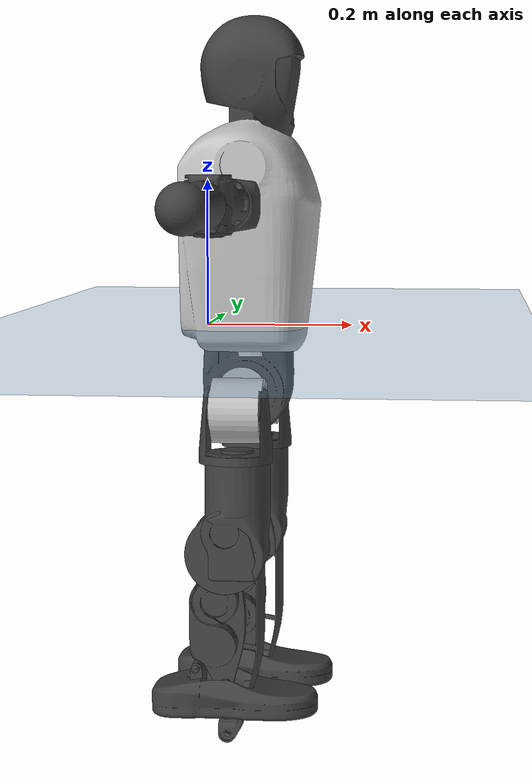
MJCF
<mujoco model="T1">
  <compiler angle="radian" assetdir="assets" balanceinertia="true" inertiafromgeom="false"/>

  <option timestep="0.005" density="1.2" viscosity="2e-05"/>

  <size nkey="1"/>

  <visual>
    <quality shadowsize="8192"/>
    <map shadowclip="0.5"/>
  </visual>

  <default>
    <default class="/">
      <joint armature="0.01" damping="0.01" frictionloss="0.1"/>
      <geom contype="0" conaffinity="0" group="1" solref="-1000 -80"/>
      <site size="0.01 0.005 0.005" group="5"/>
      <general forcelimited="true" biastype="affine" gainprm="25" biasprm="0 -25 -0.6"/>
      <default class="t1">
        <geom rgba="0.25 0.25 0.25 1"/>
        <default class="visual">
          <geom type="mesh" group="2"/>
        </default>
        <default class="collision">
          <geom group="3"/>
        </default>
        <default class="foot">
          <geom size="0.1115 0.05 0.015" type="box" condim="6" group="4" priority="1" solimp="0.015 1 0.015"/>
        </default>
        <default class="reward_collision_sphere">
          <geom group="5" rgba="1 0 0 1"/>
        </default>
      </default>
    </default>
  </default>

  <asset>
    <texture type="skybox" colorspace="auto" name="//unnamed_texture_0" builtin="gradient" rgb1="0.95 0.95 0.95" rgb2="0.95 0.95 0.95" width="100" height="600"/>
    <texture type="2d" colorspace="auto" name="texplane" builtin="checker" rgb1="0.345 0.575 0.748" rgb2="0.345 0.575 0.748" markrgb="1 1 1" width="512" height="512"/>
    <material name="MatPlane" class="/" texture="texplane" texuniform="true" texrepeat="2 2" specular="0.9"/>
    <mesh name="Trunk" class="/" file="Trunk.stl"/>
    <mesh name="H1" class="/" file="H1.stl"/>
    <mesh name="H2" class="/" file="H2.stl"/>
    <mesh name="AL1" class="/" file="AL1.stl"/>
    <mesh name="AL2" class="/" file="AL2.stl"/>
    <mesh name="AL3" class="/" file="AL3.stl"/>
    <mesh name="left_hand_link" class="/" file="left_hand_link.stl"/>
    <mesh name="AR1" class="/" file="AR1.stl"/>
    <mesh name="AR2" class="/" file="AR2.stl"/>
    <mesh name="AR3" class="/" file="AR3.stl"/>
    <mesh name="right_hand_link" class="/" file="right_hand_link.stl"/>
    <mesh name="Waist" class="/" file="Waist.stl"/>
    <mesh name="Hip_Pitch_Left" class="/" file="Hip_Pitch_Left.stl"/>
    <mesh name="Hip_Roll_Left" class="/" file="Hip_Roll_Left.stl"/>
    <mesh name="Hip_Yaw_Left" class="/" file="Hip_Yaw_Left.stl"/>
    <mesh name="Shank_Left" class="/" file="Shank_Left.stl"/>
    <mesh name="Ankle_Cross_Left" class="/" file="Ankle_Cross_Left.stl"/>
    <mesh name="left_foot_link" class="/" file="left_foot_link.stl"/>
    <mesh name="Hip_Pitch_Right" class="/" file="Hip_Pitch_Right.stl"/>
    <mesh name="Hip_Roll_Right" class="/" file="Hip_Roll_Right.stl"/>
    <mesh name="Hip_Yaw_Right" class="/" file="Hip_Yaw_Right.stl"/>
    <mesh name="Shank_Right" class="/" file="Shank_Right.stl"/>
    <mesh name="Ankle_Cross_Right" class="/" file="Ankle_Cross_Right.stl"/>
    <mesh name="right_foot_link" class="/" file="right_foot_link.stl"/>
  </asset>

  <worldbody>
    <geom name="floor" class="/" size="100 100 0.125" type="plane" group="0" material="MatPlane"/>
    <light name="toplight_shadow" class="/" pos="0 0 5" dir="0.0990148 0.0990148 -0.990148" type="directional" ambient="0.04 0.04 0.04" diffuse="0.55 0.55 0.55" specular="0.12 0.12 0.12"/>
    <light name="toplight_fill" class="/" pos="0 0 5" dir="0.0990148 0.0990148 -0.990148" type="directional" castshadow="false" ambient="0.04 0.04 0.04" diffuse="0.3 0.3 0.3" specular="0.08 0.08 0.08"/>
    <body name="trunk" childclass="t1" pos="0.00103745 0.0001481 0.00226934" quat="1 0.000217335 0.00018594 -0.000109492">
      <inertial pos="0.046944 0.00041695 0.0791035" quat="0.999917 -0.00921323 -0.00322069 -0.00840815" mass="7.28494" diaginertia="0.046402 0.0533277 0.014428"/>
      <joint name="//unnamed_joint_0" type="free" armature="0" damping="0" frictionloss="0"/>
      <geom name="//unnamed_geom_1" class="visual" rgba="0.76 0.76 0.76 1" mesh="Trunk"/>
      <geom name="//unnamed_geom_2" class="collision" size="0.0641638 0.0855517 0.128328" pos="0.0525306 0 0.0915303" type="box"/>
      <geom name="//unnamed_geom_3" class="reward_collision_sphere" size="0.0983844" pos="0.0525306 0 0.0762752"/>
      <geom name="//unnamed_geom_4" class="reward_collision_sphere" size="0.0128328" pos="0.0525306 0.0789045 0"/>
      <geom name="//unnamed_geom_5" class="reward_collision_sphere" size="0.0128328" pos="0.0525306 -0.0789045 0"/>
      <geom name="//unnamed_geom_6" class="reward_collision_sphere" size="0.0128328" pos="0.0525306 0.0993269 0.137295"/>
      <geom name="//unnamed_geom_7" class="reward_collision_sphere" size="0.0128328" pos="0.0525306 -0.0993269 0.137295"/>
      <site name="imu" pos="0.00211381 -0.00818748 0.0124193" size="0.00855517"/>
      <camera name="track" pos="0 -1.85658 0" quat="0.707107 0.707107 0 0" mode="trackcom"/>
      <camera name="ego_camera" pos="0.106812 0 0.320356" quat="-0.5 -0.5 0.5 0.5"/>
      <body name="H1" pos="0.0510639 -0.00316999 0.185244" quat="0.999999 0.00123686 -0.000600964 -3.82211e-05">
        <inertial pos="-0.00256606 -0.00199915 0.0432371" quat="0.76272 -0.0180169 -0.0048156 0.64646" mass="0.273513" diaginertia="0.000125375 0.000153624 3.91625e-05"/>
        <joint name="AAHead_yaw" pos="0 0 0" axis="-0.000664867 0.00064671 1" stiffness="0.00408331" range="-1.52485 1.62277" armature="0.00906107" damping="0.0150541" frictionloss="0.0793756"/>
        <geom name="//unnamed_geom_8" class="visual" mesh="H1"/>
        <body name="H2" pos="-0.00119213 -0.00133452 0.0469943" quat="1 -0.000174245 0.00014142 0.000282993">
          <inertial pos="0.00680617 0.00209534 0.0778547" quat="0.988561 0.112584 -0.0679901 -0.0738148" mass="0.392689" diaginertia="0.00106348 0.00127974 0.000440258"/>
          <joint name="Head_pitch" pos="0 0 0" axis="-0.00631731 -0.999979 -0.00167695" stiffness="0.00702378" range="-1.21743 0.401972" armature="0.00774859" damping="0" frictionloss="0.0846588"/>
          <geom name="//unnamed_geom_9" class="visual" mesh="H2"/>
          <geom name="//unnamed_geom_10" class="collision" size="0.0684414" pos="0.0087551 0 0.0839027"/>
          <geom name="//unnamed_geom_11" class="reward_collision_sphere" size="0.0769965" pos="0.0175102 0 0.0762752"/>
        </body>
      </body>
      <body name="AL1" pos="0.0496155 0.0987199 0.165638" quat="0.999999 0.000230132 0.000504375 -0.00104631">
        <inertial pos="0.00201479 0.0443687 0.00116105" quat="0.498483 0.502142 -0.496138 0.503205" mass="0.326775" diaginertia="0.000698869 0.000884649 7.76793e-05"/>
        <joint name="Left_Shoulder_Pitch" pos="0 0 0" axis="-0.00711474 0.999975 0.000590418" stiffness="0.00078438" range="-3.33887 1.1631" armature="0.00880158" damping="0.0047414" frictionloss="0.0835289"/>
        <geom name="//unnamed_geom_12" class="visual" rgba="0.76 0.76 0.76 1" mesh="AL1"/>
        <body name="AL2" pos="0.00293828 0.0455928 0.00126114" quat="1 -2.48042e-05 -0.000217933 0.000143434">
          <inertial pos="0.00647811 0.0359915 -0.002486" quat="0.488121 0.511652 -0.487753 0.511906" mass="0.101674" diaginertia="0.000211671 0.000248436 4.59897e-05"/>
          <joint name="Left_Shoulder_Roll" pos="0 0 0" axis="-0.999956 0.00290383 -0.00896462" range="-1.63003 1.72654" armature="0.00972892" damping="0.00461057" frictionloss="0.0761726"/>
          <geom name="//unnamed_geom_13" class="visual" mesh="AL2"/>
          <body name="AL3" pos="0.00455885 0.0580367 2.72646e-05" quat="1 2.39664e-05 -1.91359e-05 4.01704e-05">
            <inertial pos="-0.00102316 0.0781571 -0.000351796" quat="0.701538 0.712589 -0.0053722 -0.0057626" mass="0.64938" diaginertia="0.00680435 0.0088403 0.000157155"/>
            <joint name="Left_Elbow_Pitch" pos="0 0 0" axis="0.00115085 -0.99999 0.0043244" stiffness="0.0135636" range="-2.32635 2.25701" armature="0.00814666" damping="0.00910006" frictionloss="0.0834156"/>
            <geom name="//unnamed_geom_14" class="visual" mesh="AL3"/>
            <geom name="//unnamed_geom_15" class="collision" size="0.0256655 0.0641638" pos="0 0.0464144 0" quat="0.707105 0.707108 0 0" type="cylinder"/>
            <geom name="//unnamed_geom_16" class="reward_collision_sphere" size="0.0307986"/>
            <body name="left_hand_link" pos="0.00106795 0.137318 0.00371374" quat="1 0.000180583 3.57915e-05 -0.000561101">
              <inertial pos="0.000469285 0.0993783 -0.000911034" quat="0.709159 0.705006 0.00181873 -0.00755205" mass="0.206147" diaginertia="0.00434127 0.0055424 5.3567e-05"/>
              <joint name="Left_Elbow_Yaw" pos="0 0 0" axis="-0.0104765 0.00327333 0.99994" range="-2.44648 0.0405183" armature="0.00861536" damping="0" frictionloss="0.0873773"/>
              <geom name="//unnamed_geom_17" class="visual" mesh="left_hand_link"/>
              <geom name="//unnamed_geom_18" class="collision" size="0.0256655 0.0748577" pos="0 0.120678 0" quat="0.707105 0.707108 0 0" type="cylinder"/>
              <geom name="//unnamed_geom_19" class="reward_collision_sphere" size="0.0427758"/>
              <geom name="//unnamed_geom_20" class="reward_collision_sphere" size="0.0299431" pos="0 0.102112 0"/>
              <geom name="//unnamed_geom_21" class="reward_collision_sphere" size="0.0299431" pos="0 0.199582 0"/>
            </body>
          </body>
        </body>
      </body>
      <body name="AR1" pos="0.0484858 -0.095465 0.166873" quat="1 -0.000166442 0.000306063 -0.000148799">
        <inertial pos="-0.0021261 -0.0427881 -0.000289638" quat="0.502538 0.494513 -0.502817 0.500088" mass="0.346326" diaginertia="0.000700686 0.000887086 7.71226e-05"/>
        <joint name="Right_Shoulder_Pitch" pos="0 0 0" axis="0.0131748 -0.999889 -0.0069522" stiffness="0.00495189" range="-1.20683 3.30908" armature="0.00894839" damping="0.0167895" frictionloss="0.0832171"/>
        <geom name="//unnamed_geom_22" class="visual" rgba="0.76 0.76 0.76 1" mesh="AR1"/>
        <body name="AR2" pos="-0.00120749 -0.0408906 -0.000609236" quat="0.999999 0.00085327 -0.00119606 -2.0631e-05">
          <inertial pos="0.000322575 -0.0327007 -0.00249761" quat="0.50213 0.485152 -0.52147 0.490471" mass="0.103013" diaginertia="0.000208532 0.000244375 4.61139e-05"/>
          <joint name="Right_Shoulder_Roll" pos="0 0 0" axis="-0.999976 -0.00638485 0.0026148" stiffness="0.0100892" range="-1.68488 1.54836" armature="0.00825485" damping="0.0147317" frictionloss="0.0796519"/>
          <geom name="//unnamed_geom_23" class="visual" mesh="AR2"/>
          <body name="AR3" pos="-0.00284517 -0.0557796 0.00157333" quat="1 -3.41493e-05 4.98868e-05 -0.000325322">
            <inertial pos="-0.000426769 -0.0806275 0.0010769" quat="0.70782 0.706393 -6.79551e-05 1.68927e-06" mass="0.62049" diaginertia="0.00643063 0.00918897 0.00015917"/>
            <joint name="Right_Elbow_Pitch" pos="0 0 0" axis="0.000805021 0.999999 -0.00119891" stiffness="0.00155424" range="-2.27378 2.26927" armature="0.00847657" damping="0.0193938" frictionloss="0.0896862"/>
            <geom name="//unnamed_geom_24" class="visual" mesh="AR3"/>
            <geom name="//unnamed_geom_25" class="collision" size="0.0256655 0.0641638" pos="0 -0.0464144 0" quat="0.707105 0.707108 0 0" type="cylinder"/>
            <geom name="//unnamed_geom_26" class="reward_collision_sphere" size="0.0307986"/>
            <body name="right_hand_link" pos="-0.0016744 -0.135828 0.00142019" quat="0.999999 -0.000377637 -0.000473332 -0.00139805">
              <inertial pos="0.0005018 -0.101798 0.00179738" quat="0.707088 0.707087 0.00459184 -0.00578122" mass="0.203589" diaginertia="0.00401706 0.00551953 5.48249e-05"/>
              <joint name="Right_Elbow_Yaw" pos="0 0 0" axis="0.000300585 -0.000331382 1" range="-0.0446562 2.45241" armature="0.00881367" damping="0.00628595" frictionloss="0.084346"/>
              <geom name="//unnamed_geom_27" class="visual" mesh="right_hand_link"/>
              <geom name="//unnamed_geom_28" class="collision" size="0.0256655 0.0748577" pos="0 -0.120678 0" quat="0.707105 0.707108 0 0" type="cylinder"/>
              <geom name="//unnamed_geom_29" class="reward_collision_sphere" size="0.0427758"/>
              <geom name="//unnamed_geom_30" class="reward_collision_sphere" size="0.0299431" pos="0 -0.102112 0"/>
              <geom name="//unnamed_geom_31" class="reward_collision_sphere" size="0.0299431" pos="0 -0.199582 0"/>
            </body>
          </body>
        </body>
      </body>
      <body name="Waist" pos="0.0559475 0.00209268 -0.0902026" quat="1 0.000434562 -0.000218716 -2.52846e-05">
        <inertial pos="0.00261818 0.000266547 0.00698178" quat="0.981827 0.00876589 -0.189574 -0.00030046" mass="1.62472" diaginertia="0.00268863 0.00350344 0.0011922"/>
        <joint name="Waist" pos="0 0 0" axis="0.0014267 0.0062258 0.99998" stiffness="0.00262525" range="-1.56315 1.61853" armature="0.00783163" damping="0.0197602" frictionloss="0.0884613"/>
        <geom name="//unnamed_geom_32" class="visual" mesh="Waist"/>
        <body name="Hip_Pitch_Left" pos="-0.000296946 0.099746 -0.000224062" quat="1 -5.13899e-05 0.000146324 0.000341564">
          <inertial pos="-0.00135771 -0.00629514 -0.0144924" quat="0.975159 0.220989 0.01499 0.00189696" mass="0.612038" diaginertia="0.000890558 0.000971269 0.000313007"/>
          <joint name="Left_Hip_Pitch" pos="0 0 0" axis="0.00891179 0.999933 0.00743208" stiffness="0.0106719" range="-1.80566 1.62816" armature="0.00844727" damping="0.0263261" frictionloss="0.08549"/>
          <geom name="//unnamed_geom_33" class="visual" rgba="0.76 0.76 0.76 1" mesh="Hip_Pitch_Left"/>
          <body name="Hip_Roll_Left" pos="0.00297786 -0.00161428 -0.0183226" quat="1 -8.41381e-05 -0.000160593 0.000634757">
            <inertial pos="0.000254263 0.000215883 -0.0429836" quat="0.708849 -0.00692948 -0.00766593 0.705285" mass="0.23929" diaginertia="0.000899084 0.00101516 0.000128616"/>
            <joint name="Left_Hip_Roll" pos="0 0 0" axis="-0.999974 0.000650367 0.00720097" range="-1.53736 0.170265" armature="0.00871996" damping="0.0134597" frictionloss="0.0952178"/>
            <geom name="//unnamed_geom_34" class="visual" mesh="Hip_Roll_Left"/>
            <geom name="//unnamed_geom_35" class="reward_collision_sphere" size="0.0470534"/>
            <body name="Hip_Yaw_Left" pos="-0.00107792 0.00132785 -0.0630923" quat="0.999999 1.23481e-05 0.00109911 -0.000719401">
              <inertial pos="-0.00745491 0.000154992 -0.0668618" quat="0.697262 -0.0363569 -0.0311686 0.715215" mass="1.30769" diaginertia="0.0131855 0.0173455 0.000691628"/>
              <joint name="Left_Hip_Yaw" pos="0 0 0" axis="-0.00375434 -0.00606593 -0.999975" stiffness="0.00334216" range="-1.01421 1.00591" armature="0.00868221" damping="0" frictionloss="0.0861486"/>
              <geom name="//unnamed_geom_36" class="visual" mesh="Hip_Yaw_Left"/>
              <geom name="//unnamed_geom_37" class="collision" size="0.0427758 0.0684414" type="cylinder"/>
              <body name="Shank_Left" pos="-0.0119496 -0.00203588 -0.104736" quat="0.999999 -0.0010066 -0.000761569 0.000306167">
                <inertial pos="-0.00437412 0.00233298 -0.0955403" quat="0.996719 0.000193982 -0.0252466 0.0768997" mass="1.11592" diaginertia="0.0172273 0.024658 0.000477747"/>
                <joint name="Left_Knee_Pitch" pos="0 0 0" axis="-0.00549332 0.999985 0.000719209" stiffness="0.00152179" range="0.042717 2.33286" armature="0.00930371" damping="0.0143553" frictionloss="0.0935634"/>
                <geom name="//unnamed_geom_38" class="visual" mesh="Shank_Left"/>
                <geom name="//unnamed_geom_39" class="collision" size="0.0427758 0.0641638" pos="0 0 -0.0915303" type="cylinder"/>
                <geom name="//unnamed_geom_40" class="reward_collision_sphere" size="0.0556086"/>
                <body name="Ankle_Cross_Left" pos="-0.00220498 -0.00181116 -0.213522" quat="0.999999 -0.000486095 -0.000668165 -0.00109458">
                  <inertial pos="-0.00286793 0.00264522 -0.00642648" quat="0.443262 0.556745 0.542209 0.446725" mass="0.0465917" diaginertia="1.55236e-05 1.7406e-05 2.87652e-06"/>
                  <joint name="Left_Ankle_Pitch" pos="0 0 0" axis="-0.0149021 0.999888 0.00162263" range="-0.870585 0.406179" armature="0.00729543" damping="0.0243694" frictionloss="0.0927527"/>
                  <geom name="//unnamed_geom_41" class="visual" mesh="Ankle_Cross_Left"/>
                  <body name="left_foot_link" pos="0.00164892 -0.00142109 -0.0105813" quat="0.999999 -0.000447704 -0.000755386 -0.000608915">
                    <inertial pos="-0.00205252 -0.00118329 -0.0060573" quat="0.00144837 0.621752 -0.00399315 0.783202" mass="0.412247" diaginertia="0.00142777 0.00163505 0.000575321"/>
                    <joint name="Left_Ankle_Roll" pos="0 0 0" axis="-0.999917 -0.00783223 -0.0102726" range="-0.494415 0.392518" armature="0.00864281" damping="0" frictionloss="0.0833722"/>
                    <geom name="//unnamed_geom_42" class="visual" mesh="left_foot_link"/>
                    <geom name="left_foot" class="foot" size="0.100154 0.0370469 0.0144054" pos="0.0087551 0 -0.0114413"/>
                    <geom name="//unnamed_geom_44" class="reward_collision_sphere" size="0.0444869" pos="0.0087551 0 -0.0114413"/>
                    <geom name="//unnamed_geom_45" class="reward_collision_sphere" size="0.0256655" pos="0.0831734 -0.0213506 -0.0114413"/>
                    <geom name="//unnamed_geom_46" class="reward_collision_sphere" size="0.0256655" pos="-0.0612857 -0.0213506 -0.0114413"/>
                    <site name="left_foot" class="foot" pos="0.0087551 0 -0.0114413" size="0.00855517"/>
                  </body>
                </body>
              </body>
            </body>
          </body>
        </body>
        <body name="Hip_Pitch_Right" pos="-0.00406155 -0.0994481 -0.000179127" quat="0.999999 -0.00102945 -0.00104875 -0.000450752">
          <inertial pos="4.2265e-06 0.00905551 -0.0125864" quat="0.975103 -0.220833 0.019239 -0.00602951" mass="0.65291" diaginertia="0.000945458 0.00102437 0.000338208"/>
          <joint name="Right_Hip_Pitch" pos="0 0 0" axis="-0.0041596 -0.999935 0.0106039" range="-1.56639 1.78111" armature="0.00932601" damping="0.0029361" frictionloss="0.0976738"/>
          <geom name="//unnamed_geom_47" class="visual" rgba="0.76 0.76 0.76 1" mesh="Hip_Pitch_Right"/>
          <body name="Hip_Roll_Right" pos="-0.000580506 -0.00248219 -0.012544" quat="1 -1.01113e-05 -6.06931e-05 -5.31232e-05">
            <inertial pos="0.00173688 0.00138557 -0.0435168" quat="0.705067 -0.0102315 0.00390872 0.709056" mass="0.234089" diaginertia="0.000840014 0.00103047 0.000129201"/>
            <joint name="Right_Hip_Roll" pos="0 0 0" axis="-0.999996 -0.00232031 0.00146464" stiffness="0.00196344" range="-0.208095 1.61852" armature="0.00809334" damping="0.0128832" frictionloss="0.0864518"/>
            <geom name="//unnamed_geom_48" class="visual" mesh="Hip_Roll_Right"/>
            <geom name="//unnamed_geom_49" class="reward_collision_sphere" size="0.0470534"/>
            <body name="Hip_Yaw_Right" pos="-0.000250623 -0.00216009 -0.0633908" quat="1 0.000508035 -0.000186394 0.000562296">
              <inertial pos="-0.00287584 -0.000984231 -0.0664751" quat="0.712558 -0.0227595 -0.0437569 0.699877" mass="1.42579" diaginertia="0.0137473 0.0178204 0.000706495"/>
              <joint name="Right_Hip_Yaw" pos="0 0 0" axis="0.0111296 -0.0127521 -0.999857" stiffness="0.00669729" range="-0.98822 1.00096" armature="0.00845806" damping="0.00471396" frictionloss="0.07972"/>
              <geom name="//unnamed_geom_50" class="visual" mesh="Hip_Yaw_Right"/>
              <geom name="//unnamed_geom_51" class="collision" size="0.0427758 0.0684414" type="cylinder"/>
              <body name="Shank_Right" pos="-0.0136379 0.00250931 -0.104491" quat="1 0.000632954 0.000189886 -8.25083e-05">
                <inertial pos="-0.00341937 0.0024231 -0.0940408" quat="0.999224 -0.0033766 -0.022132 -0.0324057" mass="1.12602" diaginertia="0.0179555 0.0235728 0.000492414"/>
                <joint name="Right_Knee_Pitch" pos="0 0 0" axis="-0.00971685 -0.999952 0.00105652" stiffness="0.00976012" range="-2.37323 -0.0121522" armature="0.00814159" damping="0.0227743" frictionloss="0.0968265"/>
                <geom name="//unnamed_geom_52" class="visual" mesh="Shank_Right"/>
                <geom name="//unnamed_geom_53" class="collision" size="0.0427758 0.0641638" pos="0 0 -0.0915303" type="cylinder"/>
                <geom name="//unnamed_geom_54" class="reward_collision_sphere" size="0.0556086"/>
                <body name="Ankle_Cross_Right" pos="-0.00250719 -0.000477793 -0.215803" quat="1 5.75038e-05 0.000600368 0.000629783">
                  <inertial pos="-0.00336037 0.0005969 -0.00689008" quat="0.450192 0.542138 0.549275 0.449122" mass="0.0433425" diaginertia="1.44535e-05 1.70958e-05 2.84537e-06"/>
                  <joint name="Right_Ankle_Pitch" pos="0 0 0" axis="0.000925858 -1 0.00018292" stiffness="0.00941084" range="-0.356097 0.818445" armature="0.00950416" damping="0" frictionloss="0.0842308"/>
                  <geom name="//unnamed_geom_55" class="visual" mesh="Ankle_Cross_Right"/>
                  <body name="right_foot_link" pos="0.00185058 0.000706827 -0.00647267" quat="0.999999 -0.00123846 0.000220086 0.00066026">
                    <inertial pos="0.0013455 0.00109684 -0.00874694" quat="-9.68907e-05 0.620816 5.93929e-05 0.783957" mass="0.453044" diaginertia="0.00138249 0.00168494 0.000562399"/>
                    <joint name="Right_Ankle_Roll" pos="0 0 0" axis="-0.999936 -0.000536075 -0.0113354" range="-0.434342 0.494985" armature="0.00739529" damping="0.00572166" frictionloss="0.0822323"/>
                    <geom name="//unnamed_geom_56" class="visual" mesh="right_foot_link"/>
                    <geom name="right_foot" class="foot" size="0.102223 0.042425 0.0130415" pos="0.0087551 0 -0.0114413"/>
                    <geom name="//unnamed_geom_58" class="reward_collision_sphere" size="0.0342207"/>
                    <geom name="//unnamed_geom_59" class="reward_collision_sphere" size="0.0256655" pos="0.0087551 0 -0.0114413"/>
                    <geom name="//unnamed_geom_60" class="reward_collision_sphere" size="0.0256655" pos="0.0831734 0.0213506 -0.0114413"/>
                    <geom name="//unnamed_geom_61" class="reward_collision_sphere" size="0.0256655" pos="-0.0612857 0.0213506 -0.0114413"/>
                    <site name="right_foot" class="foot" pos="0.0087551 0 -0.0114413" size="0.00855517"/>
                  </body>
                </body>
              </body>
            </body>
          </body>
        </body>
      </body>
    </body>
  </worldbody>

  <contact>
    <pair class="/" geom1="floor" geom2="left_foot" name="//unnamed_contact_0"/>
    <pair class="/" geom1="floor" geom2="right_foot" name="//unnamed_contact_1"/>
  </contact>

  <actuator>
    <general name="AAHead_yaw" class="/" joint="AAHead_yaw" forcerange="-5.37333 5.37333" gainprm="23.0507" biasprm="0 -23.0507 -0.547038"/>
    <general name="Head_pitch" class="/" joint="Head_pitch" forcerange="-5.90746 5.90746" gainprm="23.0507" biasprm="0 -23.0507 -0.547038"/>
    <general name="Left_Shoulder_Pitch" class="/" joint="Left_Shoulder_Pitch" forcerange="-15.6957 15.6957" gainprm="23.0507" biasprm="0 -23.0507 -0.547038"/>
    <general name="Left_Shoulder_Roll" class="/" joint="Left_Shoulder_Roll" forcerange="-15.3347 15.3347" gainprm="23.0507" biasprm="0 -23.0507 -0.547038"/>
    <general name="Left_Elbow_Pitch" class="/" joint="Left_Elbow_Pitch" forcerange="-16.6069 16.6069" gainprm="23.0507" biasprm="0 -23.0507 -0.547038"/>
    <general name="Left_Elbow_Yaw" class="/" joint="Left_Elbow_Yaw" forcerange="-15.3307 15.3307" gainprm="23.0507" biasprm="0 -23.0507 -0.547038"/>
    <general name="Right_Shoulder_Pitch" class="/" joint="Right_Shoulder_Pitch" forcerange="-15.8057 15.8057" gainprm="23.0507" biasprm="0 -23.0507 -0.547038"/>
    <general name="Right_Shoulder_Roll" class="/" joint="Right_Shoulder_Roll" forcerange="-15.2572 15.2572" gainprm="23.0507" biasprm="0 -23.0507 -0.547038"/>
    <general name="Right_Elbow_Pitch" class="/" joint="Right_Elbow_Pitch" forcerange="-14.5076 14.5076" gainprm="23.0507" biasprm="0 -23.0507 -0.547038"/>
    <general name="Right_Elbow_Yaw" class="/" joint="Right_Elbow_Yaw" forcerange="-16.4144 16.4144" gainprm="23.0507" biasprm="0 -23.0507 -0.547038"/>
    <general name="Waist" class="/" joint="Waist" forcerange="-28.3952 28.3952" gainprm="23.0507" biasprm="0 -23.0507 -0.547038"/>
    <general name="Left_Hip_Pitch" class="/" joint="Left_Hip_Pitch" forcerange="-38.0275 38.0275" gainprm="23.0507" biasprm="0 -23.0507 -0.547038"/>
    <general name="Left_Hip_Roll" class="/" joint="Left_Hip_Roll" forcerange="-26.428 26.428" gainprm="23.0507" biasprm="0 -23.0507 -0.547038"/>
    <general name="Left_Hip_Yaw" class="/" joint="Left_Hip_Yaw" forcerange="-27.6988 27.6988" gainprm="23.0507" biasprm="0 -23.0507 -0.547038"/>
    <general name="Left_Knee_Pitch" class="/" joint="Left_Knee_Pitch" forcerange="-54.3658 54.3658" gainprm="23.0507" biasprm="0 -23.0507 -0.547038"/>
    <general name="Left_Ankle_Pitch" class="/" joint="Left_Ankle_Pitch" forcerange="-17.2872 17.2872" gainprm="23.0507" biasprm="0 -23.0507 -0.547038"/>
    <general name="Left_Ankle_Roll" class="/" joint="Left_Ankle_Roll" forcerange="-12.5264 12.5264" gainprm="23.0507" biasprm="0 -23.0507 -0.547038"/>
    <general name="Right_Hip_Pitch" class="/" joint="Right_Hip_Pitch" forcerange="-39.9795 39.9795" gainprm="23.0507" biasprm="0 -23.0507 -0.547038"/>
    <general name="Right_Hip_Roll" class="/" joint="Right_Hip_Roll" forcerange="-26.6079 26.6079" gainprm="23.0507" biasprm="0 -23.0507 -0.547038"/>
    <general name="Right_Hip_Yaw" class="/" joint="Right_Hip_Yaw" forcerange="-27.623 27.623" gainprm="23.0507" biasprm="0 -23.0507 -0.547038"/>
    <general name="Right_Knee_Pitch" class="/" joint="Right_Knee_Pitch" forcerange="-56.9621 56.9621" gainprm="23.0507" biasprm="0 -23.0507 -0.547038"/>
    <general name="Right_Ankle_Pitch" class="/" joint="Right_Ankle_Pitch" forcerange="-15.4605 15.4605" gainprm="23.0507" biasprm="0 -23.0507 -0.547038"/>
    <general name="Right_Ankle_Roll" class="/" joint="Right_Ankle_Roll" forcerange="-12.3817 12.3817" gainprm="23.0507" biasprm="0 -23.0507 -0.547038"/>
  </actuator>

  <sensor>
    <gyro site="imu" name="imu_angular_velocity"/>
    <velocimeter site="imu" name="imu_linear_velocity"/>
    <framelinvel objtype="site" objname="left_foot" name="left_foot_global_linear_velocity"/>
    <framelinvel objtype="site" objname="right_foot" name="right_foot_global_linear_velocity"/>
  </sensor>

  <keyframe>
    <key name="home" qpos="0 0 0.6385 1 0 0 0 0 0 0 1.4 0 -0.4 0 -1.4 0 0.4 0 -0.4 0 0 0.8 -0.4 0 0.4 0 0 -0.8 0.4 0"/>
  </keyframe>
</mujoco>
